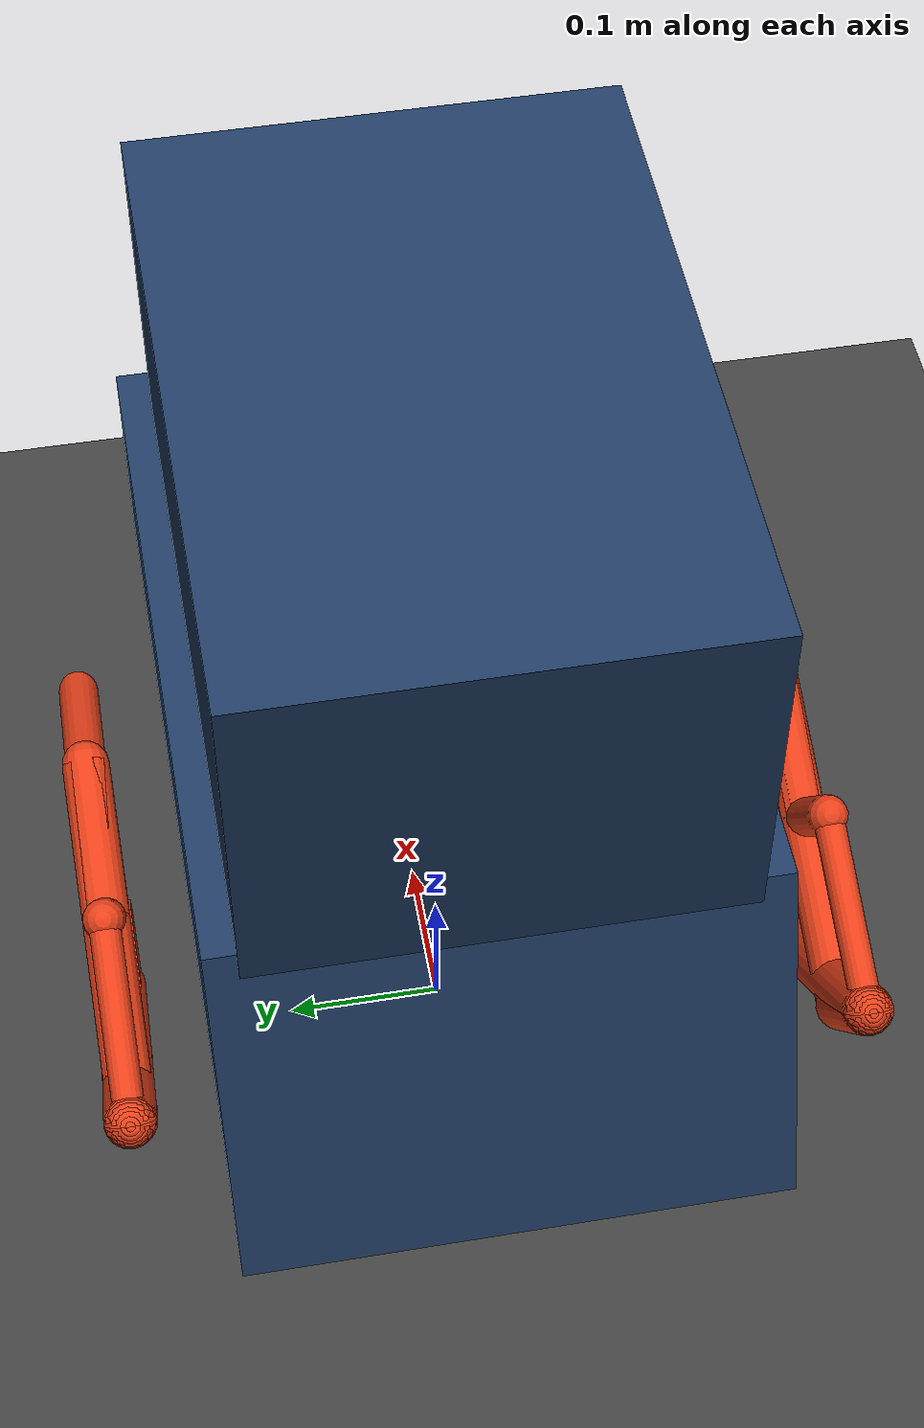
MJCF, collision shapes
<?xml version='1.0' encoding='utf-8'?>
<mujoco model="UZ-05 wheel-legged chassis">
  <compiler angle="radian" meshdir="../meshes/stl" />
  <visual>
    <headlight ambient="0.35 0.35 0.35" diffuse="0.8 0.8 0.8" />
    <rgba haze="0.15 0.25 0.35 1" />
  </visual>
  <asset>
    <mesh name="chassis_collision_trapezoid" vertex="-0.16057692 -0.29399796 -0.10461356 0.16057692 -0.29399796 -0.10461356 0.16057692 0.29399796 -0.10461356 -0.16057692 0.29399796 -0.10461356 -0.16057692 -0.21899796 0.10461356 0.16057692 -0.21899796 0.10461356 0.16057692 0.21899796 0.10461356 -0.16057692 0.21899796 0.10461356" face="0 2 1 0 3 2 4 5 6 4 6 7 0 1 5 0 5 4 3 7 6 3 6 2 0 4 7 0 7 3 1 2 6 1 6 5" />
    <mesh name="left_link_right_leg_1" file="left_link_right_leg_1.stl" scale="0.001 0.001 0.001" />
    <mesh name="left_link_right_leg_2" file="left_link_right_leg_2.stl" scale="0.001 0.001 0.001" />
    <mesh name="left_link_right_leg_3" file="left_link_right_leg_3.stl" scale="0.001 0.001 0.001" />
    <mesh name="left_link_right_leg_4" file="left_link_right_leg_4.stl" scale="0.001 0.001 0.001" />
    <mesh name="left_link_right_leg_5" file="left_link_right_leg_5.stl" scale="0.001 0.001 0.001" />
    <mesh name="left_link_right_leg_6" file="left_link_right_leg_6.stl" scale="0.001 0.001 0.001" />
    <mesh name="left_right_wheel" file="left_right_wheel.stl" scale="0.000916666667 0.000916666667 0.000916666667" />
    <mesh name="right_link_right_leg_1" file="right_link_right_leg_1.stl" scale="0.001 0.001 0.001" />
    <mesh name="right_link_right_leg_2" file="right_link_right_leg_2.stl" scale="0.001 0.001 0.001" />
    <mesh name="right_link_right_leg_3" file="right_link_right_leg_3.stl" scale="0.001 0.001 0.001" />
    <mesh name="right_link_right_leg_4" file="right_link_right_leg_4.stl" scale="0.001 0.001 0.001" />
    <mesh name="right_link_right_leg_5" file="right_link_right_leg_5.stl" scale="0.001 0.001 0.001" />
    <mesh name="right_link_right_leg_6" file="right_link_right_leg_6.stl" scale="0.001 0.001 0.001" />
    <mesh name="right_right_wheel" file="right_right_wheel.stl" scale="0.000916666667 0.000916666667 0.000916666667" />
    <mesh name="body_000" file="body_000.stl" scale="0.001 0.001 0.001" />
    <mesh name="body_001" file="body_001.stl" scale="0.001 0.001 0.001" />
    <mesh name="body_002" file="body_002.stl" scale="0.001 0.001 0.001" />
    <mesh name="body_003" file="body_003.stl" scale="0.001 0.001 0.001" />
    <mesh name="body_004" file="body_004.stl" scale="0.001 0.001 0.001" />
    <mesh name="body_005" file="body_005.stl" scale="0.001 0.001 0.001" />
    <mesh name="body_006" file="body_006.stl" scale="0.001 0.001 0.001" />
    <mesh name="body_007" file="body_007.stl" scale="0.001 0.001 0.001" />
    <mesh name="body_008" file="body_008.stl" scale="0.001 0.001 0.001" />
    <mesh name="body_009" file="body_009.stl" scale="0.001 0.001 0.001" />
    <mesh name="body_010" file="body_010.stl" scale="0.001 0.001 0.001" />
    <mesh name="body_011" file="body_011.stl" scale="0.001 0.001 0.001" />
    <mesh name="gimal_000" file="gimal_000.obj" scale="0.001 0.001 0.001" />
    <mesh name="gimal_001" file="gimal_001.obj" scale="0.001 0.001 0.001" />
    <mesh name="gimal_002" file="gimal_002.obj" scale="0.001 0.001 0.001" />
  </asset>
  <worldbody>
    <light name="key_light" pos="0 -3 3" dir="0 1 -1" diffuse="0.8 0.8 0.8"/>
    <light name="fill_light" pos="3 3 2" dir="-1 -1 -0.5" diffuse="0.4 0.4 0.4"/>
    <geom name="floor" type="plane" size="5 5 0.05" pos="0 0 0"
          rgba="0.25 0.25 0.25 1" contype="1" conaffinity="1"/>

    <body name="chassis" pos="0 0 0.300377934">
      <freejoint name="chassis_free" />
      <inertial pos="0 0 0" mass="10.651834504036061" diaginertia="0.35 0.2 0.45" />
      <site name="base_link" type="sphere" pos="0 0 0" size="0.008" rgba="1 1 1 0.8" group="4" />
      <site name="imu" type="sphere" pos="0 0 0" quat="1 0 0 0" size="0.004" rgba="0.2 0.8 1 0" group="5" />
      <frame name="legacy_y_forward_model_frame" quat="0.707106781 0 0 -0.707106781">
        <geom name="body_visual_000" type="mesh" mesh="body_000" rgba="0.25 0.3 0.34 1" contype="0" conaffinity="0" />
        <geom name="body_visual_001" type="mesh" mesh="body_001" rgba="0.25 0.3 0.34 1" contype="0" conaffinity="0" />
        <geom name="body_visual_002" type="mesh" mesh="body_002" rgba="0.25 0.3 0.34 1" contype="0" conaffinity="0" />
        <geom name="body_visual_003" type="mesh" mesh="body_003" rgba="0.25 0.3 0.34 1" contype="0" conaffinity="0" />
        <geom name="body_visual_004" type="mesh" mesh="body_004" rgba="0.25 0.3 0.34 1" contype="0" conaffinity="0" />
        <geom name="body_visual_005" type="mesh" mesh="body_005" rgba="0.25 0.3 0.34 1" contype="0" conaffinity="0" />
        <geom name="body_visual_006" type="mesh" mesh="body_006" rgba="0.25 0.3 0.34 1" contype="0" conaffinity="0" />
        <geom name="body_visual_007" type="mesh" mesh="body_007" rgba="0.25 0.3 0.34 1" contype="0" conaffinity="0" />
        <geom name="body_visual_008" type="mesh" mesh="body_008" rgba="0.25 0.3 0.34 1" contype="0" conaffinity="0" />
        <geom name="body_visual_009" type="mesh" mesh="body_009" rgba="0.25 0.3 0.34 1" contype="0" conaffinity="0" />
        <geom name="body_visual_010" type="mesh" mesh="body_010" rgba="0.25 0.3 0.34 1" contype="0" conaffinity="0" />
        <geom name="body_visual_011" type="mesh" mesh="body_011" rgba="0.25 0.3 0.34 1" contype="0" conaffinity="0" />
        <geom name="chassis_collision" type="mesh" mesh="chassis_collision_trapezoid" pos="0 0 -0.004386246" mass="0" rgba="0.12 0.23 0.38 0" friction="1 0.01 0.001" solref="0.002 1" solimp="0.99 0.999 0.001" contype="1" conaffinity="1" />
        <body name="gimbal_fixed" pos="0 0 0">
          <inertial pos="0 -0.0175142899 0.1515931137" mass="2.4" diaginertia="0.05334 0.03520 0.05020" />
        <geom name="gimbal_visual_000" type="mesh" mesh="gimal_000" mass="0" contype="0" conaffinity="0" rgba="0.35 0.35 0.38 1" />
        <geom name="gimbal_visual_001" type="mesh" mesh="gimal_001" mass="0" contype="0" conaffinity="0" rgba="0.35 0.35 0.38 1" />
        <geom name="gimbal_visual_002" type="mesh" mesh="gimal_002" mass="0" contype="0" conaffinity="0" rgba="0.35 0.35 0.38 1" />
        <geom name="gimbal_collision" type="box" pos="0 -0.01751429 0.15159311" size="0.1417 0.20674 0.1547" mass="0" rgba="0.12 0.23 0.38 0" friction="1 0.01 0.001" solref="0.002 1" solimp="0.99 0.999 0.001" contype="1" conaffinity="1" />
        </body>
        <camera name="overview" pos="1.1 -1.5 0.8" xyaxes="0.806 0.592 0 -0.236 0.322 0.917" />
        <body name="left_leg_mount" pos="-0.210335 0 0">
          <body name="left_link_right_leg_2" pos="0 0 0">
            <joint name="left_J_chassis_link2" type="hinge" axis="1 0 0" damping="0.02" armature="0.015795" />
            <inertial pos="0.0312788248 -0.0872244528 -0.0341169325" mass="0.33726515207227498" fullinertia="0.00213441307 0.000367588625 0.00177584952 -1.95845727e-07 6.72512301e-07 -0.000672571974" />
            <geom name="left_link_right_leg_2_visual" type="mesh" mesh="left_link_right_leg_2" contype="0" conaffinity="0" rgba="0.65 0.7 0.75 1" />
            <geom name="left_link_right_leg_2_collision_0" type="capsule" size="0.014" mass="0" rgba="0.9 0.25 0.1 0.18" friction="1 0.01 0.001" solref="0.002 1" solimp="0.99 0.999 0.001" contype="1" conaffinity="1" fromto="0 0 0 0 -0.087263437 -0.036267659" />
            <geom name="left_link_right_leg_2_collision_1" type="capsule" size="0.014" mass="0" rgba="0.9 0.25 0.1 0.18" friction="1 0.01 0.001" solref="0.002 1" solimp="0.99 0.999 0.001" contype="1" conaffinity="1" fromto="0 0 0 0 -0.193918746 -0.080594782" />
            <body name="left_link_right_leg_5" pos="0 -0.087263437 -0.036267659">
              <joint name="left_J_link2_link5" type="hinge" axis="1 0 0" damping="0.02" armature="0.0001" />
              <inertial pos="0.01525 0.0202954079 -0.0113681935" mass="0.10788547284235001" fullinertia="0.000349769167 0.000169439722 0.000181606949 0 0 0.000168198489" />
              <geom name="left_link_right_leg_5_visual" type="mesh" mesh="left_link_right_leg_5" contype="0" conaffinity="0" rgba="0.65 0.7 0.75 1" />
              <geom name="left_link_right_leg_5_collision_0" type="capsule" size="0.012" mass="0" rgba="0.9 0.25 0.1 0.18" friction="1 0.01 0.001" solref="0.002 1" solimp="0.99 0.999 0.001" contype="1" conaffinity="1" fromto="0 0 0 0 0.0872634346 -0.07100241" />
              <geom name="left_link_right_leg_5_collision_1" type="capsule" size="0.012" mass="0" rgba="0.9 0.25 0.1 0.18" friction="1 0.01 0.001" solref="0.002 1" solimp="0.99 0.999 0.001" contype="1" conaffinity="1" fromto="0 0 0 0 -0.038083202 0.052675149" />
              <body name="left_link_right_leg_3" pos="0 0.0872634346 -0.07100241">
                <joint name="left_J_link5_link3" type="hinge" axis="1 0 0" damping="0.02" armature="0.0001" />
                <inertial pos="0.0273116548 0.043631697 0.0355011868" mass="0.055275907394814701" fullinertia="8.07813584e-05 3.27687454e-05 4.87260135e-05 0 0 -3.84174742e-05" />
                <geom name="left_link_right_leg_3_visual" type="mesh" mesh="left_link_right_leg_3" contype="0" conaffinity="0" rgba="0.65 0.7 0.75 1" />
                <geom name="left_link_right_leg_3_collision_0" type="capsule" size="0.009" mass="0" rgba="0.9 0.25 0.1 0.18" friction="1 0.01 0.001" solref="0.002 1" solimp="0.99 0.999 0.001" contype="1" conaffinity="1" fromto="0 0 0 0 0.0872634434 0.071002411" />
                <site name="left_site_link3_to_link4" pos="0 0.0872634434 0.071002411" size="0.002" rgba="1 0.2 0.1 0" />
              </body>
              <body name="left_link_right_leg_1" pos="0 -0.038083202 0.052675149">
                <joint name="left_J_link5_link1" type="hinge" axis="1 0 0" damping="0.02" armature="0.0001" />
                <inertial pos="0.00318713722 -0.053327692 -0.0221635943" mass="0.057077033175480997" fullinertia="8.6999945e-05 1.40259018e-05 7.37229014e-05 0 0 -2.9991192e-05" />
                <geom name="left_link_right_leg_1_visual" type="mesh" mesh="left_link_right_leg_1" contype="0" conaffinity="0" rgba="0.65 0.7 0.75 1" />
                <geom name="left_link_right_leg_1_collision_0" type="capsule" size="0.009" mass="0" rgba="0.9 0.25 0.1 0.18" friction="1 0.01 0.001" solref="0.002 1" solimp="0.99 0.999 0.001" contype="1" conaffinity="1" fromto="0 0 0 0 -0.106655319 -0.044327161" />
                <body name="left_link_right_leg_6" pos="0 -0.106655319 -0.044327161">
                  <joint name="left_J_link1_link6" type="hinge" axis="1 0 0" damping="0.02" armature="0.0001" />
                  <inertial pos="0.0154465748 0.129629238 -0.124969703" mass="0.35678989619168999" fullinertia="0.0036231355 0.00154094766 0.00209123503 7.35445334e-06 -6.61012664e-06 0.00172906234" />
                  <geom name="left_link_right_leg_6_visual" type="mesh" mesh="left_link_right_leg_6" contype="0" conaffinity="0" rgba="0.65 0.7 0.75 1" />
                  <geom name="left_link_right_leg_6_collision_0" type="capsule" size="0.015" mass="0" rgba="0.9 0.25 0.1 0.18" friction="1 0.01 0.001" solref="0.002 1" solimp="0.99 0.999 0.001" contype="1" conaffinity="1" fromto="0 0 0 0 0.038083212 -0.052675111" />
                  <geom name="left_link_right_leg_6_collision_1" type="capsule" size="0.015" mass="0" rgba="0.9 0.25 0.1 0.18" friction="1 0.01 0.001" solref="0.002 1" solimp="0.99 0.999 0.001" contype="1" conaffinity="1" fromto="0 0 0 0 0.232001957 -0.210458263" />
                  <body name="left_right_wheel" pos="0 0.232001957 -0.210458263">
                    <joint name="left_J_link6_wheel" type="hinge" axis="1 0 0" damping="0.02" armature="0.0001" />
                    <inertial pos="-0.0114231133 6.95796156e-05 -4.77515438e-05" mass="0.24511650859182901" fullinertia="0.000310811554 0.000174440013 0.000174360453 -2.79107328e-07 1.85069428e-07 -1.7786433e-07" />
                    <geom name="left_right_wheel_visual" type="mesh" mesh="left_right_wheel" contype="0" conaffinity="0" rgba="0.65 0.7 0.75 1" />
                    <geom name="left_wheel_collision" type="cylinder" size="0.055 0.0125" mass="0" rgba="0.9 0.25 0.1 0.18" friction="1 0.01 0.001" solref="0.002 1" solimp="0.99 0.999 0.001" contype="1" conaffinity="1" quat="0.707106781 0 0.707106781 0" />
                    <site name="left_wheel_axis_limit_site" pos="0 0 0" size="0.002" rgba="0.2 1 0.2 0" />
                  </body>
                  <site name="left_site_link6_to_link2" pos="0 0.038083212 -0.052675111" size="0.002" rgba="1 0.2 0.1 0" />
                </body>
              </body>
            </body>
            <site name="left_site_link2_to_link6" pos="0 -0.193918746 -0.080594782" size="0.002" rgba="1 0.2 0.1 0" />
          </body>
          <body name="left_link_right_leg_4" pos="0 0 0">
            <joint name="left_J_chassis_link4" type="hinge" axis="1 0 0" damping="0.02" armature="0.015795" />
            <inertial pos="0.0154363205 0.0319502343 -0.0132788729" mass="0.27121511798094999" fullinertia="0.000367429102 7.52545039e-05 0.000295856827 1.21528679e-06 -5.05086728e-07 0.000110828476" />
            <geom name="left_link_right_leg_4_visual" type="mesh" mesh="left_link_right_leg_4" contype="0" conaffinity="0" rgba="0.65 0.7 0.75 1" />
            <geom name="left_link_right_leg_4_collision_0" type="capsule" size="0.012" mass="0" rgba="0.9 0.25 0.1 0.18" friction="1 0.01 0.001" solref="0.002 1" solimp="0.99 0.999 0.001" contype="1" conaffinity="1" fromto="0 0 0 0 0.087263441 -0.036267658" />
            <site name="left_site_link4_to_link3" pos="0 0.087263441 -0.036267658" size="0.002" rgba="1 0.2 0.1 0" />
          </body>
          <site name="left_hip_axis_limit_site" pos="0 0 0" size="0.002" rgba="0.2 1 0.2 0" />
        </body>
        <body name="right_leg_mount" pos="0.210335 0 0">
          <body name="right_link_right_leg_2" pos="0 0 0">
            <joint name="right_J_chassis_link2" type="hinge" axis="1 0 0" damping="0.02" armature="0.015795" />
            <inertial pos="-0.0312788248 -0.0872244528 -0.0341169325" mass="0.38623297789897398" fullinertia="0.0024443104 0.000420959142 0.00203368668 2.24280741e-07 -7.70154957e-07 -0.000770223294" />
            <geom name="right_link_right_leg_2_visual" type="mesh" mesh="right_link_right_leg_2" contype="0" conaffinity="0" rgba="0.65 0.7 0.75 1" />
            <geom name="right_link_right_leg_2_collision_0" type="capsule" size="0.014" mass="0" rgba="0.9 0.25 0.1 0.18" friction="1 0.01 0.001" solref="0.002 1" solimp="0.99 0.999 0.001" contype="1" conaffinity="1" fromto="0 0 0 0 -0.087263437 -0.036267659" />
            <geom name="right_link_right_leg_2_collision_1" type="capsule" size="0.014" mass="0" rgba="0.9 0.25 0.1 0.18" friction="1 0.01 0.001" solref="0.002 1" solimp="0.99 0.999 0.001" contype="1" conaffinity="1" fromto="0 0 0 0 -0.193918746 -0.080594782" />
            <body name="right_link_right_leg_5" pos="0 -0.087263437 -0.036267659">
              <joint name="right_J_link2_link5" type="hinge" axis="1 0 0" damping="0.02" armature="0.0001" />
              <inertial pos="-0.01525 0.0202954079 -0.0113681935" mass="0.10788547284235001" fullinertia="0.000349769167 0.000169439722 0.000181606949 0 0 0.000168198489" />
              <geom name="right_link_right_leg_5_visual" type="mesh" mesh="right_link_right_leg_5" contype="0" conaffinity="0" rgba="0.65 0.7 0.75 1" />
              <geom name="right_link_right_leg_5_collision_0" type="capsule" size="0.012" mass="0" rgba="0.9 0.25 0.1 0.18" friction="1 0.01 0.001" solref="0.002 1" solimp="0.99 0.999 0.001" contype="1" conaffinity="1" fromto="0 0 0 0 0.0872634346 -0.07100241" />
              <geom name="right_link_right_leg_5_collision_1" type="capsule" size="0.012" mass="0" rgba="0.9 0.25 0.1 0.18" friction="1 0.01 0.001" solref="0.002 1" solimp="0.99 0.999 0.001" contype="1" conaffinity="1" fromto="0 0 0 0 -0.038083202 0.052675149" />
              <body name="right_link_right_leg_3" pos="0 0.0872634346 -0.07100241">
                <joint name="right_J_link5_link3" type="hinge" axis="1 0 0" damping="0.02" armature="0.0001" />
                <inertial pos="-0.0273116548 0.043631697 0.0355011868" mass="0.055275907394814798" fullinertia="8.07813584e-05 3.27687454e-05 4.87260135e-05 0 0 -3.84174742e-05" />
                <geom name="right_link_right_leg_3_visual" type="mesh" mesh="right_link_right_leg_3" contype="0" conaffinity="0" rgba="0.65 0.7 0.75 1" />
                <geom name="right_link_right_leg_3_collision_0" type="capsule" size="0.009" mass="0" rgba="0.9 0.25 0.1 0.18" friction="1 0.01 0.001" solref="0.002 1" solimp="0.99 0.999 0.001" contype="1" conaffinity="1" fromto="0 0 0 0 0.0872634434 0.071002411" />
                <site name="right_site_link3_to_link4" pos="0 0.0872634434 0.071002411" size="0.002" rgba="1 0.2 0.1 0" />
              </body>
              <body name="right_link_right_leg_1" pos="0 -0.038083202 0.052675149">
                <joint name="right_J_link5_link1" type="hinge" axis="1 0 0" damping="0.02" armature="0.0001" />
                <inertial pos="-0.00318713722 -0.053327692 -0.0221635943" mass="0.057077033175480997" fullinertia="8.6999945e-05 1.40259018e-05 7.37229014e-05 0 0 -2.9991192e-05" />
                <geom name="right_link_right_leg_1_visual" type="mesh" mesh="right_link_right_leg_1" contype="0" conaffinity="0" rgba="0.65 0.7 0.75 1" />
                <geom name="right_link_right_leg_1_collision_0" type="capsule" size="0.009" mass="0" rgba="0.9 0.25 0.1 0.18" friction="1 0.01 0.001" solref="0.002 1" solimp="0.99 0.999 0.001" contype="1" conaffinity="1" fromto="0 0 0 0 -0.106655319 -0.044327161" />
                <body name="right_link_right_leg_6" pos="0 -0.106655319 -0.044327161">
                  <joint name="right_J_link1_link6" type="hinge" axis="1 0 0" damping="0.02" armature="0.0001" />
                  <inertial pos="-0.0154465748 0.129629238 -0.124969703" mass="0.35678989607011002" fullinertia="0.00362313549 0.00154094766 0.00209123503 -7.35445334e-06 6.61012664e-06 0.00172906234" />
                  <geom name="right_link_right_leg_6_visual" type="mesh" mesh="right_link_right_leg_6" contype="0" conaffinity="0" rgba="0.65 0.7 0.75 1" />
                  <geom name="right_link_right_leg_6_collision_0" type="capsule" size="0.015" mass="0" rgba="0.9 0.25 0.1 0.18" friction="1 0.01 0.001" solref="0.002 1" solimp="0.99 0.999 0.001" contype="1" conaffinity="1" fromto="0 0 0 0 0.038083212 -0.052675111" />
                  <geom name="right_link_right_leg_6_collision_1" type="capsule" size="0.015" mass="0" rgba="0.9 0.25 0.1 0.18" friction="1 0.01 0.001" solref="0.002 1" solimp="0.99 0.999 0.001" contype="1" conaffinity="1" fromto="0 0 0 0 0.232001957 -0.210458263" />
                  <body name="right_right_wheel" pos="0 0.232001957 -0.210458263">
                    <joint name="right_J_link6_wheel" type="hinge" axis="1 0 0" damping="0.02" armature="0.0001" />
                    <inertial pos="0.0114231133 6.95796156e-05 -4.77515438e-05" mass="0.24511650859182901" fullinertia="0.000310811554 0.000174440013 0.000174360453 2.79107328e-07 -1.85069428e-07 -1.7786433e-07" />
                    <geom name="right_right_wheel_visual" type="mesh" mesh="right_right_wheel" contype="0" conaffinity="0" rgba="0.65 0.7 0.75 1" />
                    <geom name="right_wheel_collision" type="cylinder" size="0.055 0.0125" mass="0" rgba="0.9 0.25 0.1 0.18" friction="1 0.01 0.001" solref="0.002 1" solimp="0.99 0.999 0.001" contype="1" conaffinity="1" quat="0.707106781 0 0.707106781 0" />
                    <site name="right_wheel_axis_limit_site" pos="0 0 0" size="0.002" rgba="0.2 1 0.2 0" />
                  </body>
                  <site name="right_site_link6_to_link2" pos="0 0.038083212 -0.052675111" size="0.002" rgba="1 0.2 0.1 0" />
                </body>
              </body>
            </body>
            <site name="right_site_link2_to_link6" pos="0 -0.193918746 -0.080594782" size="0.002" rgba="1 0.2 0.1 0" />
          </body>
          <body name="right_link_right_leg_4" pos="0 0 0">
            <joint name="right_J_chassis_link4" type="hinge" axis="1 0 0" damping="0.02" armature="0.015795" />
            <inertial pos="-0.0154363205 0.0319502343 -0.0132788729" mass="0.109162611740991" fullinertia="0.000147888218 3.0289529e-05 0.000119080766 -4.8914633e-07 2.03294664e-07 4.46078597e-05" />
            <geom name="right_link_right_leg_4_visual" type="mesh" mesh="right_link_right_leg_4" contype="0" conaffinity="0" rgba="0.65 0.7 0.75 1" />
            <geom name="right_link_right_leg_4_collision_0" type="capsule" size="0.012" mass="0" rgba="0.9 0.25 0.1 0.18" friction="1 0.01 0.001" solref="0.002 1" solimp="0.99 0.999 0.001" contype="1" conaffinity="1" fromto="0 0 0 0 0.087263441 -0.036267658" />
            <site name="right_site_link4_to_link3" pos="0 0.087263441 -0.036267658" size="0.002" rgba="1 0.2 0.1 0" />
          </body>
          <site name="right_hip_axis_limit_site" pos="0 0 0" size="0.002" rgba="0.2 1 0.2 0" />
        </body>
      </frame>
    </body>
  </worldbody>
  <contact>
    <exclude body1="chassis" body2="left_link_right_leg_2" />
    <exclude body1="chassis" body2="left_link_right_leg_4" />
    <exclude body1="chassis" body2="right_link_right_leg_2" />
    <exclude body1="chassis" body2="right_link_right_leg_4" />
    <exclude body1="left_link_right_leg_1" body2="left_link_right_leg_5" />
    <exclude body1="left_link_right_leg_1" body2="left_link_right_leg_6" />
    <exclude body1="left_link_right_leg_2" body2="left_link_right_leg_4" />
    <exclude body1="left_link_right_leg_2" body2="left_link_right_leg_5" />
    <exclude body1="left_link_right_leg_2" body2="left_link_right_leg_6" />
    <exclude body1="left_link_right_leg_3" body2="left_link_right_leg_4" />
    <exclude body1="left_link_right_leg_3" body2="left_link_right_leg_5" />
    <exclude body1="left_link_right_leg_6" body2="left_right_wheel" />
    <exclude body1="right_link_right_leg_1" body2="right_link_right_leg_5" />
    <exclude body1="right_link_right_leg_1" body2="right_link_right_leg_6" />
    <exclude body1="right_link_right_leg_2" body2="right_link_right_leg_4" />
    <exclude body1="right_link_right_leg_2" body2="right_link_right_leg_5" />
    <exclude body1="right_link_right_leg_2" body2="right_link_right_leg_6" />
    <exclude body1="right_link_right_leg_3" body2="right_link_right_leg_4" />
    <exclude body1="right_link_right_leg_3" body2="right_link_right_leg_5" />
    <exclude body1="right_link_right_leg_6" body2="right_right_wheel" />
  </contact>
  <equality>
    <connect name="left_close_link3_link4" site1="left_site_link3_to_link4" site2="left_site_link4_to_link3" solref="0.002 1" solimp="0.999 0.9999 0.001" />
    <connect name="left_close_link6_link2" site1="left_site_link6_to_link2" site2="left_site_link2_to_link6" solref="0.002 1" solimp="0.999 0.9999 0.001" />
    <connect name="right_close_link3_link4" site1="right_site_link3_to_link4" site2="right_site_link4_to_link3" solref="0.002 1" solimp="0.999 0.9999 0.001" />
    <connect name="right_close_link6_link2" site1="right_site_link6_to_link2" site2="right_site_link2_to_link6" solref="0.002 1" solimp="0.999 0.9999 0.001" />
  </equality>
  <tendon>
    <spatial name="left_leg_max_extension" limited="true" range="0 0.388">
      <site site="left_hip_axis_limit_site" />
      <site site="left_wheel_axis_limit_site" />
    </spatial>
    <spatial name="right_leg_max_extension" limited="true" range="0 0.388">
      <site site="right_hip_axis_limit_site" />
      <site site="right_wheel_axis_limit_site" />
    </spatial>
  </tendon>
  <actuator>
    <motor name="left_dm8009p_link2" joint="left_J_chassis_link2" gear="1" ctrllimited="true" ctrlrange="-39 39" forcelimited="true" forcerange="-39 39" />
    <motor name="left_dm8009p_link4" joint="left_J_chassis_link4" gear="1" ctrllimited="true" ctrlrange="-39 39" forcelimited="true" forcerange="-39 39" />
    <motor name="right_dm8009p_link2" joint="right_J_chassis_link2" gear="1" ctrllimited="true" ctrlrange="-39 39" forcelimited="true" forcerange="-39 39" />
    <motor name="right_dm8009p_link4" joint="right_J_chassis_link4" gear="1" ctrllimited="true" ctrlrange="-39 39" forcelimited="true" forcerange="-39 39" />
    <motor name="left_rm3508_wheel" joint="left_J_link6_wheel" gear="15.7647058824" ctrllimited="true" ctrlrange="-0.2854477612 0.2854477612" forcelimited="true" forcerange="-0.2854477612 0.2854477612" />
    <motor name="right_rm3508_wheel" joint="right_J_link6_wheel" gear="15.7647058824" ctrllimited="true" ctrlrange="-0.2854477612 0.2854477612" forcelimited="true" forcerange="-0.2854477612 0.2854477612" />
  </actuator>
  <sensor>
    <accelerometer name="imu_accel" site="imu" />
    <gyro name="imu_ang_vel" site="imu" />
  </sensor>
</mujoco>
